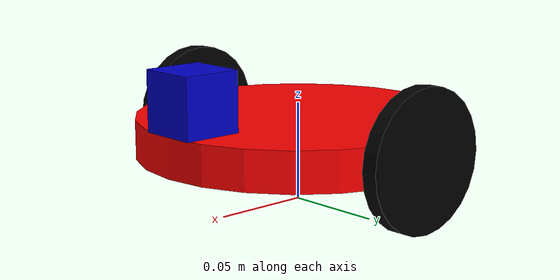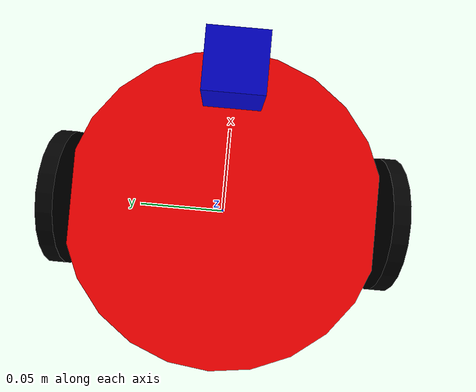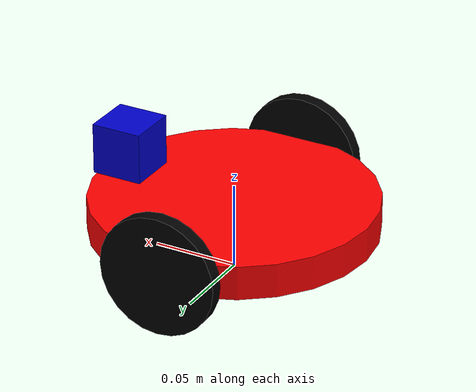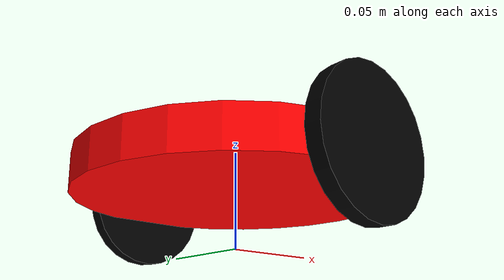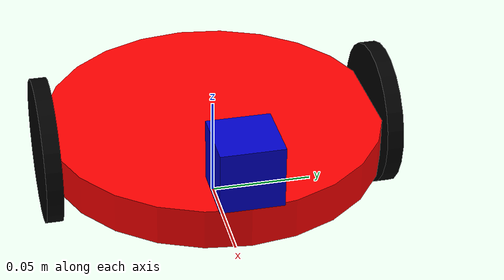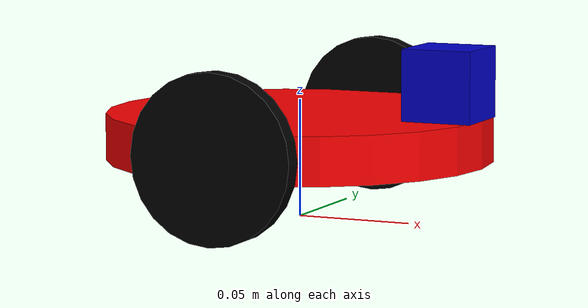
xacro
<?xml version="1.0" ?>
<!-- |    This document was autogenerated by xacro from differential_robot.urdf        | -->
<!-- |    EDITING THIS FILE BY HAND IS NOT RECOMMENDED                                 | -->
<robot name="my_robot" xmlns:xacro="http://ros.org/wiki/xacro">
  <material name="blue">
    <color rgba="0 0 0.8 1"/>
  </material>
  <material name="black">
    <color rgba="0 0 0 1"/>
  </material>
  <material name="white">
    <color rgba="1 1 1 1"/>
  </material>
  <material name="red">
    <color rgba="1 0 0 1"/>
  </material>
  <link name="base_link">
    <visual>
      <geometry>
        <cylinder length="0.02" radius="0.0825"/>
      </geometry>
      <material name="red"/>
    </visual>
    <collision>
      <geometry>
        <cylinder length="0.02" radius="0.0825"/>
      </geometry>
    </collision>
    <inertial>
      <mass value="0.1"/>
      <inertia ixx="0.00017" ixy="0.0" ixz="0.0" iyy="0.00017" iyz="0.0" izz="0.00034"/>
    </inertial>
  </link>
  <link name="left_wheel">
    <visual>
      <geometry>
        <cylinder length="0.008" radius="0.035"/>
      </geometry>
      <material name="black"/>
      <origin rpy="1.57079632679 0 0" xyz="0 0 0"/>
    </visual>
    <collision>
      <geometry>
        <cylinder length="0.008" radius="0.035"/>
      </geometry>
      <origin rpy="1.57079632679 0 0" xyz="0 0 0"/>
    </collision>
    <inertial>
      <mass value="0.015"/>
      <inertia ixx="0.0000092" ixy="0.0" ixz="0.0" iyy="0.0000047" iyz="0.0" izz="0.0000047"/>
    </inertial>
  </link>
  <joint name="base_to_left_wheel" type="continuous">
    <parent link="base_link"/>
    <child link="left_wheel"/>
    <axis xyz="0 1 0"/>
    <origin xyz="0 0.0825 0"/>
  </joint>
  <link name="right_wheel">
    <visual>
      <geometry>
        <cylinder length="0.008" radius="0.035"/>
      </geometry>
      <material name="black"/>
      <origin rpy="1.57079632679 0 0" xyz="0 0 0"/>
    </visual>
    <collision>
      <geometry>
        <cylinder length="0.008" radius="0.035"/>
      </geometry>
      <origin rpy="1.57079632679 0 0" xyz="0 0 0"/>
    </collision>
    <inertial>
      <mass value="0.015"/>
      <inertia ixx="0.0000092" ixy="0.0" ixz="0.0" iyy="0.0000047" iyz="0.0" izz="0.0000047"/>
    </inertial>
  </link>
  <joint name="base_to_right_wheel" type="continuous">
    <parent link="base_link"/>
    <child link="right_wheel"/>
    <axis xyz="0 1 0"/>
    <origin xyz="0 -0.0825 0"/>
  </joint>
  <link name="head">
    <visual>
      <geometry>
        <box size="0.03 0.03 0.03"/>
      </geometry>
      <material name="blue"/>
      <origin xyz="0.015 0 0.015"/>
    </visual>
    <collision>
      <geometry>
        <box size="0.03 0.03 0.03"/>
      </geometry>
      <origin xyz="0.015 0 0.015"/>
    </collision>
    <inertial>
      <mass value="0.02"/>
      <inertia ixx="0.000003" ixy="0.0" ixz="0.0" iyy="0.000003" iyz="0.0" izz="0.000003"/>
    </inertial>
  </link>
  <joint name="tohead" type="fixed">
    <parent link="base_link"/>
    <child link="head"/>
    <origin xyz="0.0525 0 0.01"/>
  </joint>
  <link name="base_footprint">
  </link>
  <joint name="footprinttobase" type="fixed">
    <parent link="base_footprint"/>
    <child link="base_link"/>
    <origin xyz="0 0 0.035"/>
  </joint>
  <!-- Gazebo plugin for ROS Control -->
  <gazebo>
    <plugin filename="libgazebo_ros_control.so" name="gazebo_ros_control">
      <robotNamespace>/</robotNamespace>
    </plugin>
  </gazebo>
</robot>
